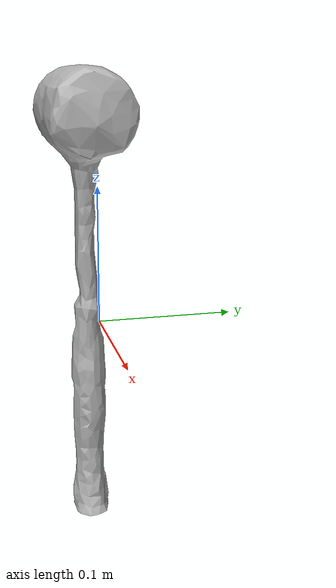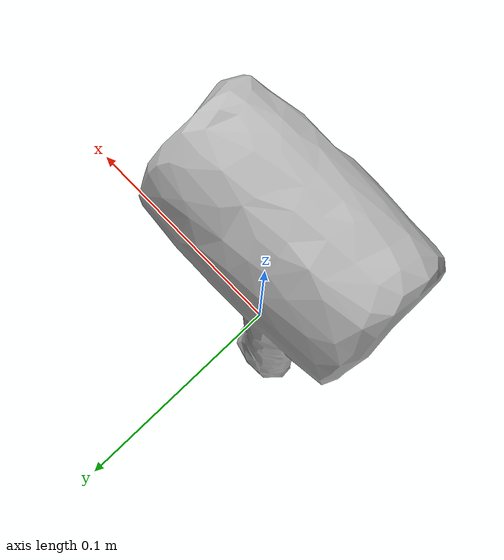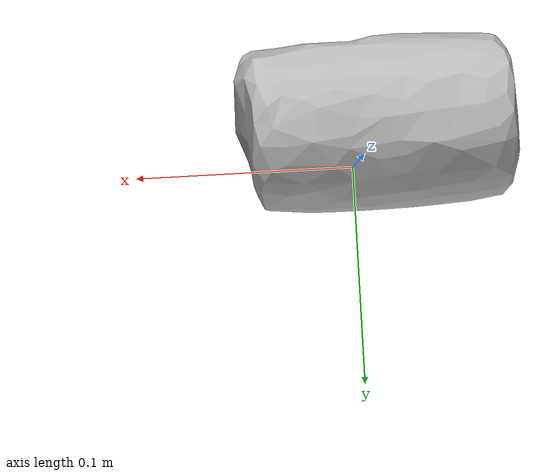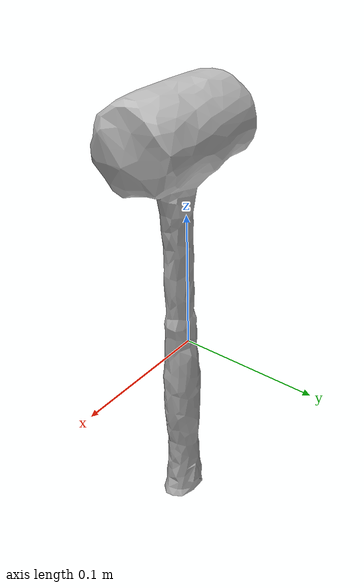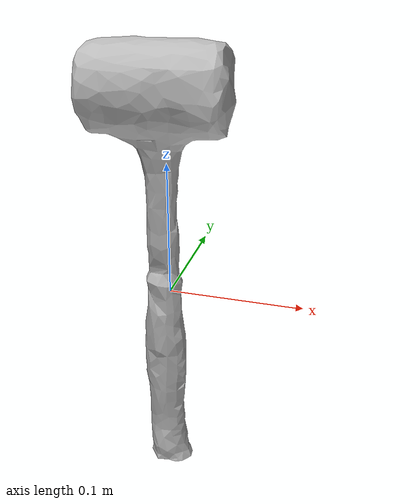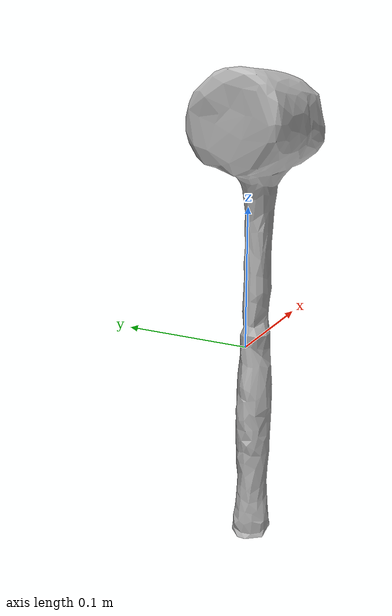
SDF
<?xml version="1.0" ?>
<sdf version="1.4">
  <model name="mallet_black_white">
    <pose>0 0 0.017  0 0 0</pose>
    <static>false</static>
    <link name="body">
      <inertial>
        <pose>-0.001947 -0.008534 0.079827 0 0 0</pose>
        <mass>1.2</mass>
        <inertia>
          <ixx>3.69501e-3</ixx>
          <ixy>0.0</ixy>
          <ixz>0.0</ixz>
          <iyy>3.83059e-3</iyy>
          <iyz>0.0</iyz>
          <izz>0.27085e-3</izz>
        </inertia>
      </inertial>
      <visual name="visual">
        <cast_shadows>true</cast_shadows>
        <geometry>
         <mesh>
           <uri>package://costar_objects/sdf/mallet_black_white/meshes/mallet_black_white.obj</uri>
         </mesh>
        </geometry>
      </visual>
      <collision name="collision">
        <surface>
          <friction>
            <ode>
              <mu>0.3</mu>
              <mu2>0.3</mu2>
            </ode>
          </friction>
        </surface>
        <geometry>
         <mesh>
           <uri>package://costar_objects/sdf/mallet_black_white/meshes/mallet_black_white.stl</uri>
         </mesh>
        </geometry>
      </collision>
    </link>
  </model>
</sdf>
